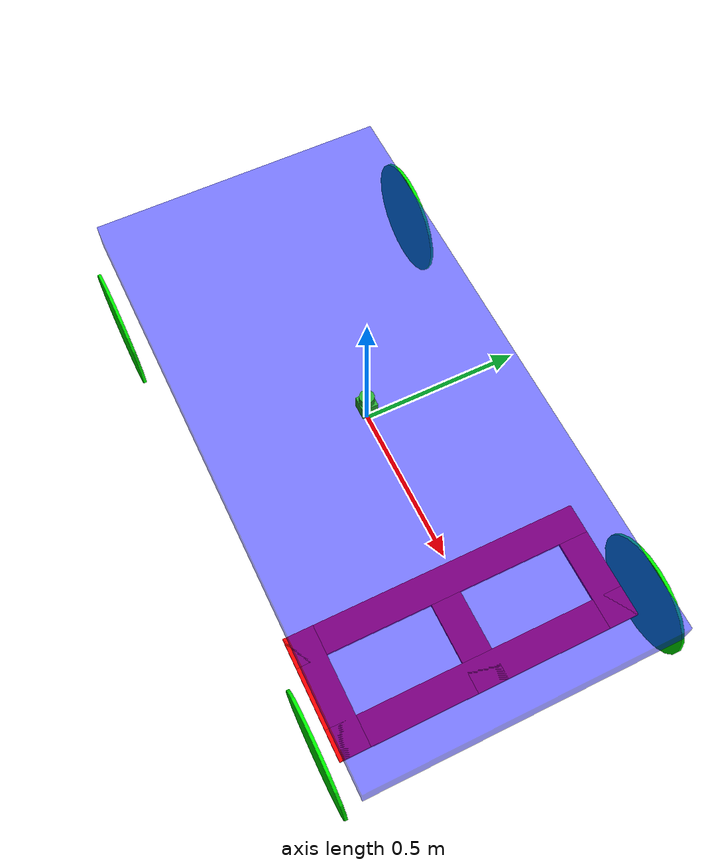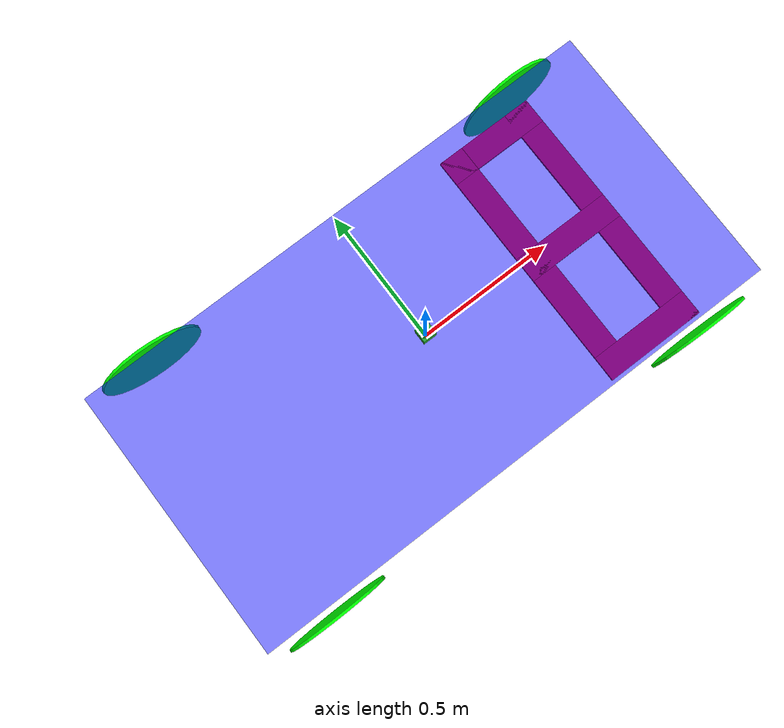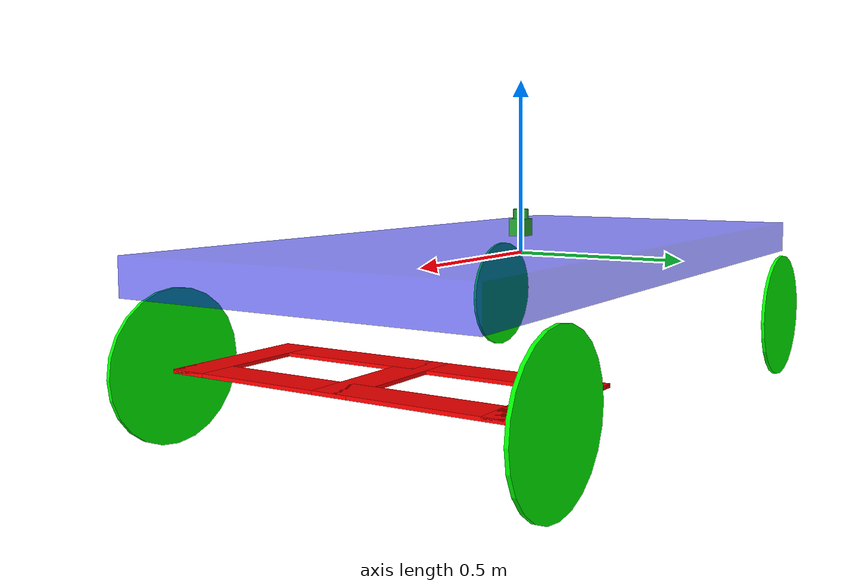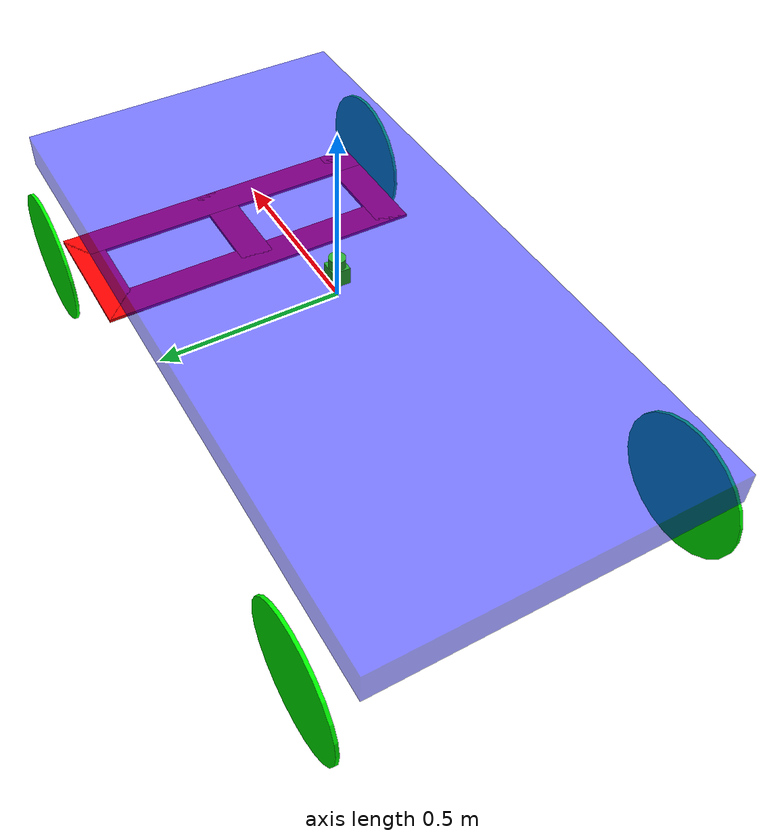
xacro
<?xml version="1.0"?>
<robot
    xmlns:gazebo="http://playerstage.sourceforge.net/gazebo/xmlschema/#gz"
    xmlns:model="http://playerstage.sourceforge.net/gazebo/xmlschema/#model"
    xmlns:sensor="http://playerstage.sourceforge.net/gazebo/xmlschema/#sensor"
    xmlns:body="http://playerstage.sourceforge.net/gazebo/xmlschema/#body"
    xmlns:geom="http://playerstage.sourceforge.net/gazebo/xmlschema/#geom"
    xmlns:joint="http://playerstage.sourceforge.net/gazebo/xmlschema/#joint"
    xmlns:controller="http://playerstage.sourceforge.net/gazebo/xmlschema/#controller"
    xmlns:interface="http://playerstage.sourceforge.net/gazebo/xmlschema/#interface"
    xmlns:rendering="http://playerstage.sourceforge.net/gazebo/xmlschema/#rendering"
    xmlns:physics="http://playerstage.sourceforge.net/gazebo/xmlschema/#physics"
    name="ackermann">

    <property name="M_PI" value="3.1415926535897931" />

    <material name="Red">
    	<color rgba="1.0 0 0 1.0"/>
    </material>
    <material name="Green">
    	<color rgba="0 1.0 0 1.0"/>
    </material>
    <material name="Blue">
    	<color rgba="0 0 1.0 0.5"/>
    </material>

    <!-- Main body -->
    <link name="base_link">
        <inertial>
            <mass value="1.0" />
            <origin xyz="0 0 0" />
            <inertia  ixx="1.0" ixy="0.0"  ixz="0.0"  iyy="1.0"  iyz="0.0"  izz="1.0" />
        </inertial>
        <visual>
            <origin xyz="0 0 0" rpy="0 0 0" />
            <geometry>
                <box size="2.0 1.0 0.1" />
            </geometry>
            <material name="Blue"/>
        </visual>
        <collision>
            <origin xyz="0 0 0" rpy="0 0 0" />
            <geometry>
                <box size="2.0 1.0 0.1" />
            </geometry>
        </collision>
    </link>
    <gazebo reference="base_link">
        <material>Gazebo/Blue</material>
    </gazebo>

    <!-- Front link of Ackermann -->
    <joint name="front_joint" type="fixed">
    	<parent link="base_link"/>
    	<child link="front_link"/>
    	<origin xyz="0.8 0.0 -0.25"/>
    </joint>
    <link name="front_link">
        <inertial>
            <mass value="1.0" />
            <origin xyz="0 0 0" />
            <inertia  ixx="1.0" ixy="0.0"  ixz="0.0"  iyy="1.0"  iyz="0.0"  izz="1.0" />
        </inertial>
        <visual>
            <geometry>
                <box size="0.1 1.0 0.01" />
            </geometry>
            <material name="Red"/>
        </visual>
        <collision>
            <geometry>
                <box size="0.1 1.0 0.01" />
            </geometry>
        </collision>
    </link>
    <gazebo reference="front_link">
        <material>Gazebo/Red</material>
    </gazebo>

    <!-- a link aligned with the steer direction -->
    <joint name="steer_joint" type="revolute" >
        <limit lower="-0.5" upper="0.5" effort="100" velocity="10" />
        <axis xyz="0 0 1" />
        <parent link="front_link" />
        <child link="steer_link" />
        <origin xyz="0.0 0.0 0.0" rpy="0 0 0" />
    </joint>
    <link name="steer_link">
        <inertial>
            <mass value="1.0" />
            <origin xyz="0 0 0" />
            <inertia  ixx="1.0" ixy="0.0"  ixz="0.0"  iyy="1.0"  iyz="0.0"  izz="1.0" />
        </inertial>
        <visual>
            <origin xyz="-0.15 0 0" />
            <geometry>
                <box size="0.4 0.1 0.01" />
            </geometry>
            <material name="Red"/>
        </visual>
        <collision>
            <origin xyz="-0.15 0 0" />
            <geometry>
                <box size="0.4 0.1 0.01" />
            </geometry>
        </collision>
    </link>
    <gazebo reference="steer_link">
        <material>Gazebo/Red</material>
    </gazebo>

    <!-- the left Ackermann bar -->
    <joint name="front_left_bar_joint" type="revolute" >
        <limit lower="-0.5" upper="0.5" effort="100" velocity="10" />
        <axis xyz="0 0 1" />
        <parent link="front_link" />
        <child link="front_left_bar_link" />
        <origin xyz="0.0 0.45 0.0" rpy="0 0 0" />
    </joint>
    <link name="front_left_bar_link">
        <inertial>
            <mass value="1.0" />
            <origin xyz="0 0 0" />
            <inertia  ixx="1.0" ixy="0.0"  ixz="0.0"  iyy="1.0"  iyz="0.0"  izz="1.0" />
        </inertial>
        <visual>
            <origin xyz="-0.15 0 0" />
            <geometry>
                <box size="0.4 0.1 0.01" />
            </geometry>
            <material name="Red"/>
        </visual>
        <collision>
            <origin xyz="-0.15 0 0" />
            <geometry>
                <box size="0.4 0.1 0.01" />
            </geometry>
        </collision>
    </link>
    <gazebo reference="front_left_bar_link">
        <material>Gazebo/Red</material>
    </gazebo>

    <!-- the right Ackermann bar -->
    <joint name="front_right_bar_joint" type="revolute" >
        <limit lower="-0.5" upper="0.5" effort="100" velocity="10" />
        <axis xyz="0 0 1" />
        <parent link="front_link" />
        <child link="front_right_bar_link" />
        <origin xyz="0.0 -0.45 0.0" rpy="0 0 0" />
    </joint>
    <link name="front_right_bar_link">
        <inertial>
            <mass value="1.0" />
            <origin xyz="0 0 0" />
            <inertia  ixx="1.0" ixy="0.0"  ixz="0.0"  iyy="1.0"  iyz="0.0"  izz="1.0" />
        </inertial>
        <visual>
            <origin xyz="-0.15 0 0" />
            <geometry>
                <box size="0.4 0.1 0.01" />
            </geometry>
            <material name="Red"/>
        </visual>
        <collision>
            <origin xyz="-0.15 0 0" />
            <geometry>
                <box size="0.4 0.1 0.01" />
            </geometry>
        </collision>
    </link>
    <gazebo reference="front_right_bar_link">
        <material>Gazebo/Red</material>
    </gazebo>

	<!-- the front left wheel -->
    <joint name="front_left_wheel_joint" type="continuous" >
        <axis xyz="0 1 0" />
        <parent link="front_left_bar_link" />
        <child link="front_left_wheel_link" />
        <origin xyz="0 0.1 0" rpy="0 0 0" />
    </joint>
    <link name="front_left_wheel_link">
        <inertial>
            <mass value="1.0" />
            <origin xyz="0 0 0" />
            <inertia  ixx="1.0" ixy="0.0"  ixz="0.0"  iyy="1.0"  iyz="0.0"  izz="1.0" />
        </inertial>
        <visual>
            <origin xyz="0 0 0" rpy="${M_PI/2} 0 0" />
            <geometry>
                <cylinder radius="0.2" length="0.01" />
            </geometry>
            <material name="Green"/>
        </visual>
        <collision>
            <origin xyz="0 0 0" rpy="${M_PI/2} 0 0" />
            <geometry>
                <cylinder radius="0.2" length="0.01" />
            </geometry>
        </collision>
    </link>
    <gazebo reference="front_left_wheel_link">
        <material>Gazebo/Green</material>
    </gazebo>

	<!-- the front right wheel -->
    <joint name="front_right_wheel_joint" type="continuous" >
        <axis xyz="0 1 0" />
        <parent link="front_right_bar_link" />
        <child link="front_right_wheel_link" />
        <origin xyz="0 -0.1 0" rpy="0 0 0" />
    </joint>
    <link name="front_right_wheel_link">
        <inertial>
            <mass value="1.0" />
            <origin xyz="0 0 0" />
            <inertia  ixx="1.0" ixy="0.0"  ixz="0.0"  iyy="1.0"  iyz="0.0"  izz="1.0" />
        </inertial>
        <visual>
            <origin xyz="0 0 0" rpy="${M_PI/2} 0 0" />
            <geometry>
                <cylinder radius="0.2" length="0.01" />
            </geometry>
            <material name="Green"/>
        </visual>
        <collision>
            <origin xyz="0 0 0" rpy="${M_PI/2} 0 0" />
            <geometry>
                <cylinder radius="0.2" length="0.01" />
            </geometry>
        </collision>
    </link>
    <gazebo reference="front_right_wheel_link">
        <material>Gazebo/Green</material>
        <turnGravityOff>false</turnGravityOff>
    </gazebo>

	<!-- the Ackerman bar -->
    <joint name="ackermann_joint" type="revolute" >
        <limit lower="-0.5" upper="0.5" effort="100" velocity="10" />
        <axis xyz="0 0 1" />
        <parent link="steer_link" />
        <child link="ackermann_bar_link" />
        <origin xyz="-0.3 0 0" rpy="0 0 0" />
    </joint>
    <link name="ackermann_bar_link">
        <inertial>
            <mass value="1.0" />
            <origin xyz="0 0 0" />
            <inertia  ixx="1.0" ixy="0.0"  ixz="0.0"  iyy="1.0"  iyz="0.0"  izz="1.0" />
        </inertial>
        <visual>
            <geometry>
                <box size="0.1 1.0 0.01" />
            </geometry>
            <material name="Red"/>
        </visual>
        <collision>
            <geometry>
                <box size="0.1 1.0 0.01" />
            </geometry>
        </collision>
    </link>
    <gazebo reference="front_link">
        <material>Gazebo/Red</material>
    </gazebo>
    <gazebo reference="ackermann_bar_link">
        <material>Gazebo/Red</material>
    </gazebo>

	<!-- Gazebo Ackermann loop joints -->
    <gazebo>
      <joint:hinge name="ackermann_left_bar_joint">
        <body1>ackermann_bar_link</body1>
        <body2>front_left_bar_link</body2>
        <anchor>ackermann_bar_link</anchor>
        <axis>0 0 1</axis>
        <anchorOffset>0 0.45 0</anchorOffset>
      </joint:hinge>
    </gazebo>
    <gazebo>
      <joint:hinge name="ackermann_right_bar_joint">
        <body1>ackermann_bar_link</body1>
        <body2>front_right_bar_link</body2>
        <anchor>ackermann_bar_link</anchor>
        <axis>0 0 1</axis>
        <anchorOffset>0 -0.45 0</anchorOffset>
      </joint:hinge>
    </gazebo>

	<!-- the back left wheel -->
    <joint name="back_left_wheel_joint" type="continuous" >
        <axis xyz="0 1 0" />
        <parent link="base_link" />
        <child link="back_left_wheel_link" />
        <origin xyz="-0.8 0.55 -0.25" rpy="0 0 0" />
    </joint>
    <link name="back_left_wheel_link">
        <inertial>
            <mass value="1.0" />
            <origin xyz="0 0 0" />
            <inertia  ixx="1.0" ixy="0.0"  ixz="0.0"  iyy="1.0"  iyz="0.0"  izz="1.0" />
        </inertial>
        <visual>
            <origin xyz="0 0 0" rpy="${M_PI/2} 0 0" />
            <geometry>
                <cylinder radius="0.2" length="0.01" />
            </geometry>
            <material name="Green"/>
        </visual>
        <collision>
            <origin xyz="0 0 0" rpy="${M_PI/2} 0 0" />
            <geometry>
                <cylinder radius="0.2" length="0.01" />
            </geometry>
        </collision>
    </link>
    <gazebo reference="back_left_wheel_link">
        <material>Gazebo/Green</material>
    </gazebo>

	<!-- the back right wheel -->
    <joint name="back_right_wheel_joint" type="continuous" >
        <axis xyz="0 1 0" />
        <parent link="base_link" />
        <child link="back_right_wheel_link" />
        <origin xyz="-0.8 -0.55 -0.25" rpy="0 0 0" />
    </joint>
    <link name="back_right_wheel_link">
        <inertial>
            <mass value="1.0" />
            <origin xyz="0 0 0" />
            <inertia  ixx="1.0" ixy="0.0"  ixz="0.0"  iyy="1.0"  iyz="0.0"  izz="1.0" />
        </inertial>
        <visual>
            <origin xyz="0 0 0" rpy="${M_PI/2} 0 0" />
            <geometry>
                <cylinder radius="0.2" length="0.01" />
            </geometry>
            <material name="Green"/>
        </visual>
        <collision>
            <origin xyz="0 0 0" rpy="${M_PI/2} 0 0" />
            <geometry>
                <cylinder radius="0.2" length="0.01" />
            </geometry>
        </collision>
    </link>
    <gazebo reference="back_right_wheel_link">
        <material>Gazebo/Green</material>
    </gazebo>

    <!-- Ackermann plugin -->
    <gazebo>
      <controller:ackermann_plugin name="ackermann_controller"
			           plugin="libackermann_plugin.so">
	<alwaysOn>true</alwaysOn>
	<update>100</update>
	<updateRate>100.0</updateRate>
	<leftJoint>back_left_wheel_joint</leftJoint>
	<rightJoint>back_right_wheel_joint</rightJoint>
	<steerJoint>steer_joint</steerJoint>
	<wheelSeparationWidth>2.12</wheelSeparationWidth>
	<wheelSeparationLength>2.33918</wheelSeparationLength>
        <!-- Shouldn't this wheel diameter include the tire?
             (40 cm is about right for the bare rim)
          -->
	<wheelDiameter>0.4</wheelDiameter>
	<driveTorque>5</driveTorque>
	<steerTorque>5</steerTorque>
	<interface:position name="position_iface_0" />
	<robotNamespace>/</robotNamespace>
	<topicName>pilot/drive</topicName>
      </controller:ackermann_plugin>

     <canonicalBody>base_footprint</canonicalBody>

    <!-- this publishes empty joint_states due to no transmission, but
    triggering robot_state_publisher to publish tf between fixed joints in erratic,
    (e.g. base_laser_link for the base_scan frame) -->
    <controller:gazebo_ros_controller_manager name="gazebo_ros_controller_manager" plugin="libgazebo_ros_controller_manager.so">
      <alwaysOn>true</alwaysOn>
      <updateRate>100.0</updateRate>
      <interface:audio name="gazebo_ros_controller_manager_dummy_iface" />
    </controller:gazebo_ros_controller_manager>

    </gazebo>

        <joint name="laser_base_mount_joint" type="fixed">
            <origin xyz="0 0 0.05" rpy="0 0 0" />
            <parent link="base_link"/>
            <child link="laser_base_link"/>
        </joint>

        <link name="laser_base_link" type="fixed">
            <inertial>
                <mass value="0.1"/>
                <origin xyz="0 0 0.0"/>
                <inertia ixx="0.1" ixy="0" ixz="0" iyy="0.1" iyz="0" izz="0.1"/>
            </inertial>

            <visual>
                <origin rpy="0 0 0" xyz="0 0 0.025"/>
                <geometry>
                    <box size="0.05 0.05 0.05"/>
                </geometry>
            </visual>

            <collision>
                <origin rpy="0 0 0" xyz="0 0 0.025"/>
                <geometry>
                    <box size="0.05 0.05 0.05"/>
                </geometry>
            </collision>
        </link>

        <joint name="base_scan_joint" type="fixed" >
            <origin xyz="0 0 0.05" rpy="0 0 0" />
            <parent link="laser_base_link" />
            <child link="base_scan_link"/>
        </joint>

        <link name="base_scan_link" type="laser">
            <inertial>
                <mass value="0.1"/>
                <origin xyz="0 0 0.0"/>
                <inertia ixx="0.1" ixy="0" ixz="0" iyy="0.1" iyz="0" izz="0.1"/>
            </inertial>

            <visual>
                <origin rpy="0 0 0" xyz="0 0 0.014"/>
                <geometry>
                    <cylinder radius="0.0229" length="0.028"/>
                </geometry>
            </visual>

            <collision>
                <origin rpy="0 0 0" xyz="0 0 0.014"/>
                <geometry>
                    <cylinder radius="0.0229" length="0.028"/>
                </geometry>
            </collision>
        </link>

        <gazebo reference="base_scan_link">
            <sensor:ray name="laser">
                <rayCount>683</rayCount>
                <rangeCount>683</rangeCount>
                <laserCount>1</laserCount>

                <origin>0.0 0.0 0.0</origin>
                <displayRays>false</displayRays>

                <minAngle>-135</minAngle>
                <maxAngle> 135</maxAngle>

                <minRange>0.06</minRange>
                <maxRange>4.0</maxRange>
                <resRange>0.001</resRange>
                <updateRate>10.0</updateRate>

                <controller:gazebo_ros_laser name="gazebo_ros_base_scan_link_controller" plugin="libgazebo_ros_laser.so">
                    <gaussianNoise>0.005</gaussianNoise>
                    <alwaysOn>true</alwaysOn>
                    <updateRate>10.0</updateRate>
                    <topicName>base_scan/scan</topicName>
                    <frameName>base_scan_link</frameName>
                    <interface:laser name="gazebo_ros_base_scan_link_iface"/>
                </controller:gazebo_ros_laser>
            </sensor:ray>
        </gazebo>

        <gazebo reference="laser_base_link">
            <material>Gazebo/Green</material>
        </gazebo>

        <gazebo reference="base_scan_link">
            <material>Gazebo/Green</material>
        </gazebo>

</robot>
